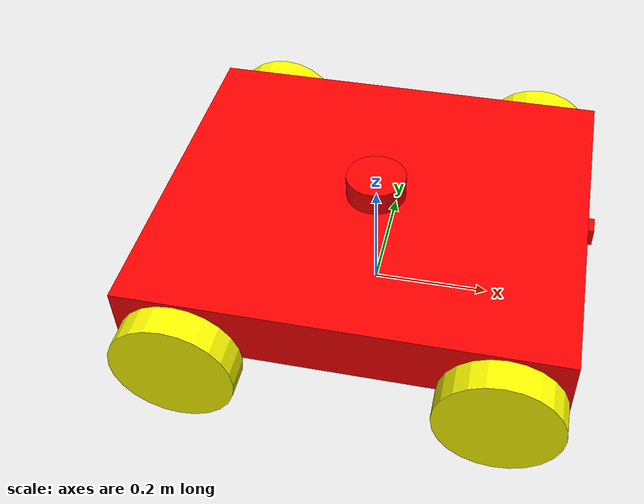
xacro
<?xml version="1.0"?>
<robot xmlns:xacro="http://www.ros.org/wiki/xacro"  name="robot">

    <xacro:arg name="use_ros2_control" default="true"/>
    <xacro:arg name="sim_mode" default="false"/>

    <xacro:include filename="robot_core.xacro" />

    <xacro:if value="$(arg use_ros2_control)">
        <xacro:include filename="ros2_control.xacro" />
    </xacro:if>
    <xacro:unless value="$(arg use_ros2_control)">
        <xacro:include filename="gazebo_control.xacro" />
    </xacro:unless>
    <xacro:include filename="lidar.xacro" />
    <xacro:include filename="camera.xacro" />

</robot>

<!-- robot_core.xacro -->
<robot xmlns:xacro="http://www.ros.org/wiki/xacro">

    <xacro:include filename="inertial_macros.xacro"/>

    <material name="white">
        <color rgba="1 1 1 1" />
    </material>

    <material name="orange">
        <color rgba="1 0.3 0.1 1"/>
    </material>

    <material name="blue">
        <color rgba="0.2 0.2 1 1"/>
    </material>

    <material name="black">
        <color rgba="0 0 0 1"/>
    </material>

    <material name="red">
        <color rgba="1 0 0 1"/>
    </material>

    <!-- BASE LINK -->

    <link name="base_link">
    </link>

    <!-- BASE FOOTRPRINT LINK-->

    <joint name="base_footprint_joint" type="fixed">
        <parent link="base_link"/>
        <child link="base_footprint_link"/>
        <origin xyz="0.0 0.0 0.0"/>
    </joint>

    <link name="base_footprint_link">
    </link>

    <!-- CHASSIS LINK -->

    <joint name="chassis_joint" type="fixed">
        <parent link="base_link"/>
        <child link="chassis"/>
        <origin xyz="0.0 0.0 0.15"/>
    </joint>

    <link name="chassis">
        <visual>
            <origin xyz="0.0 0.0 0.0"/>
            <geometry>
                <box size="0.7 0.6 0.1"/>
            </geometry>
            <material name="red"/>
        </visual>
        <collision>
            <origin xyz="0.0 0.0 0.0"/>
            <geometry>
                <box size="0.7 0.6 0.1"/>
            </geometry>
        </collision>
        <xacro:inertial_box mass="5" x="0.7" y="0.6" z="0.1">
                <origin xyz="0.0 0.0 0.0" rpy="0.0 0.0 0.0"/>
        </xacro:inertial_box>
    </link>

       <!-- All Wheel links and joints -->
    <xacro:macro name="wheel" params="name x y z">
    <joint name="${name}_wheel_joint" type="continuous">
        <origin xyz="${x} ${y} ${z}" rpy="-${pi/2} 0.0 0.0"/>
        <parent link="chassis"/>
        <child link="${name}_wheel"/>
        <axis xyz="0.0 0.0 1"/>
    </joint>

        <link name="${name}_wheel">
            <visual name="">
                <origin xyz="0.0 0.0 0.0" rpy="0.0 0.0 0.0"/>
                <geometry>
                    <cylinder radius="0.1" length="0.05"/>
                </geometry>
                <material name="white">
                    <color rgba="1.0 1.0 0.0 1.0"/>
                </material>
            </visual>
            <collision>
                <origin xyz="0.0 0.0 0.0" rpy="0.0 0.0 0.0"/>
                <geometry>
                    <sphere radius="0.1" />
                </geometry>
            </collision>
            <xacro:inertial_cylinder mass="0.75" length="0.05" radius="0.1">
                <origin xyz="0.0 0.0 0.0" rpy="0.0 0.0 0.0"/>
            </xacro:inertial_cylinder>
        </link>
            <transmission name="${name}_trans">
        <type>transmission_interface/SimpleTransmission</type>
        <joint name="${name}_wheel_joint">
            <hardwareInterface>VelocityJointInterface</hardwareInterface>
        </joint>
        <actuator name="${name}_motor">
            <hardwareInterface>VelocityJointInterface</hardwareInterface>
            <mechanicalReduction>1</mechanicalReduction>
        </actuator>
    </transmission>
    </xacro:macro>

    <!-- Wheel Creating using macros -->
    <xacro:wheel name="front_left"  x="0.250" y ="0.325" z="-0.055"/>
    <xacro:wheel name="rear_left" x="-0.250" y ="0.325" z="-0.055"/>
    <xacro:wheel name="front_right"  x="0.250" y ="-0.325" z="-0.055"/>
    <xacro:wheel name="rear_right"   x="-0.250" y ="-0.325" z="-0.055"/>

</robot>

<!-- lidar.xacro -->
<robot xmlns:xacro="http://www.ros.org/wiki/xacro">

    <joint name="laser_joint" type="fixed">

        <parent link="chassis"/>
        <child link="laser_frame"/>
        <origin xyz="0 0 0.07" rpy="0 0 0"/>

    </joint>

    <link name="laser_frame">
        <visual>
            <origin xyz="0.0 0.0 0.0" rpy="0.0 0.0 0.0"/>
            <geometry>
                <cylinder radius="0.05" length="0.04"/>
            </geometry>
            <material name="red"/>
        </visual>
        <collision>
            <origin xyz="0.0 0.0 0.0" rpy="0.0 0.0 0.0"/>
            <geometry>
                <cylinder radius="0.05" length="0.04"/>
            </geometry>
        </collision>
        <xacro:inertial_cylinder mass="1" radius="0.05" length="0.04">
            <origin xyz="0.0 0.0 0.0" rpy="0.0 0.0 0.0"/>
        </xacro:inertial_cylinder>
    </link>
    <gazebo reference="laser_frame">
        <material>Gazebo/FlatBlack</material>
        <sensor type="ray" name="laser">
            <pose>0 0 0 0 0 0</pose>
            <visualize>true</visualize>
            <update_rate>30</update_rate>
            <ray>
                <scan>
                    <horizontal>
                        <samples>360</samples>
                        <resolution>1</resolution>
                        <min_angle>-3.14</min_angle>
                        <max_angle>3.14</max_angle>
                    </horizontal>
                </scan>
                <range>
                    <min>0.3</min>
                    <max>12</max>
                    <resolution>0.01</resolution>
                </range>
            </ray>
            <plugin name="laser_controller" filename="libgazebo_ros_ray_sensor.so">
                <ros>
                    <argument>~/out:=scan</argument>
                </ros>
                <output_type>sensor_msgs/LaserScan</output_type>
                <frame_name>laser_frame</frame_name>
            </plugin>

        </sensor>
    </gazebo>
</robot>

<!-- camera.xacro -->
<robot xmlns:xacro="http://www.ros.org/wiki/xacro">

    <joint name="camera_joint" type="fixed">
        <parent link="chassis" />
        <child link="camera_link" />
       <origin xyz="0.355 0 0.03" rpy="0 0 0"/>
    </joint>

    <link name="camera_link">
        <visual>
            <origin xyz="0.0 0.0 0.0" rpy="0.0 0.0 0.0" />
            <geometry>
                <box size="0.01 0.03 0.03" />
            </geometry>
            <material name="red" />
        </visual>
    </link>

    <joint name="camera_optical_joint" type="fixed">
        <parent link="camera_link" />
        <child link="camera_link_optical" />
        <origin xyz="0 0 0" rpy="${-pi/2} 0 ${-pi/2}" />
    </joint>

        <link name="camera_link_optical"></link>

    <gazebo reference="camera_link">
        <material>Gazebo/FlatBlack</material>

                <sensor type="camera" name="camera">
            <pose>0 0 0 0 0 0</pose>
            <visualize>true</visualize>
            <update_rate>10</update_rate>
            <camera>
                <horizontal_fov>1.089</horizontal_fov>
                <image>
                    <width>640</width>
                    <height>480</height>
                    <format>R8G8B8</format>
                </image>
                <clip>
                    <near>0.05</near>
                    <far>8.0</far>
                </clip>
            </camera>
            <plugin name="camera_controller" filename="libgazebo_ros_camera.so">
                <frame_name>camera_link_optical</frame_name>
            </plugin>

        </sensor>

    </gazebo>
</robot>
